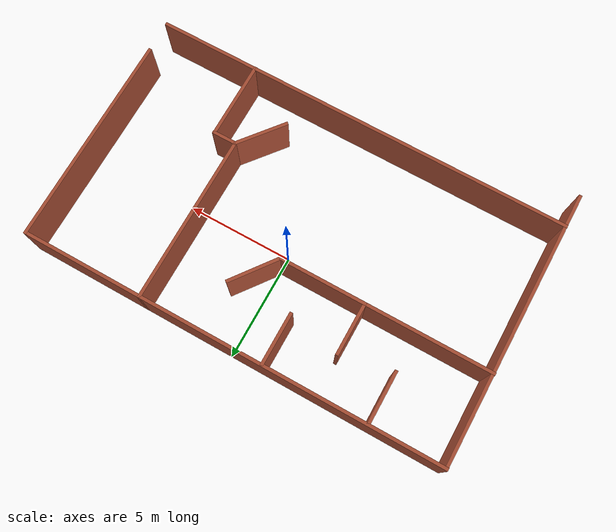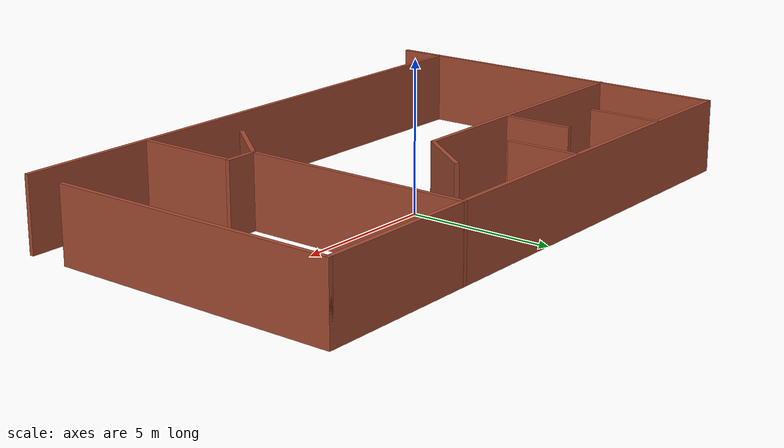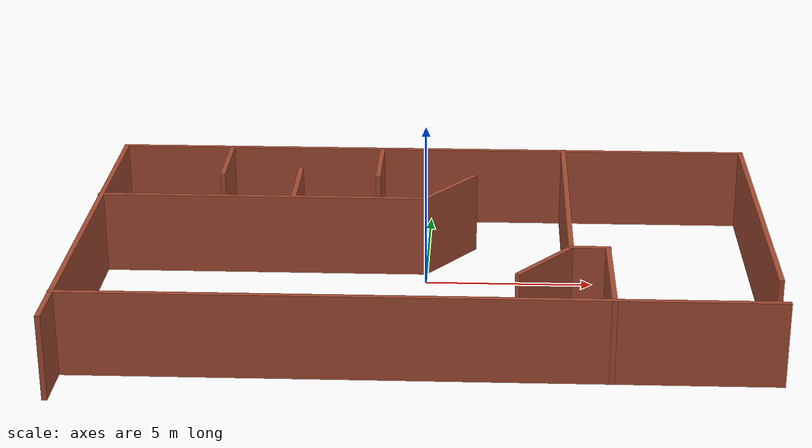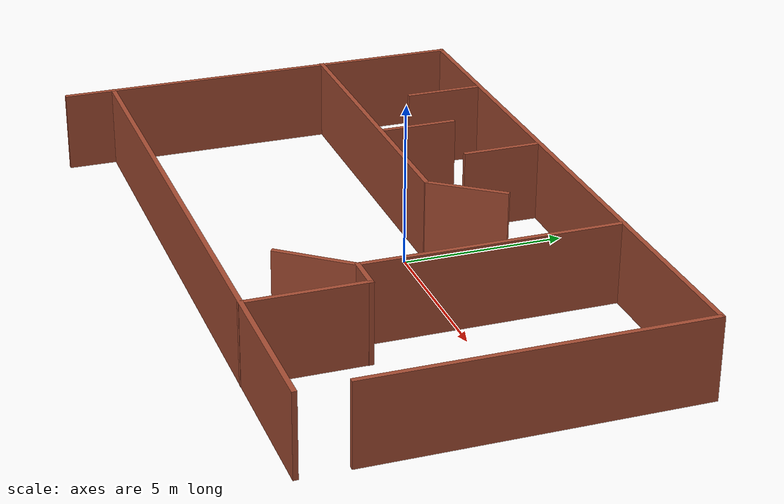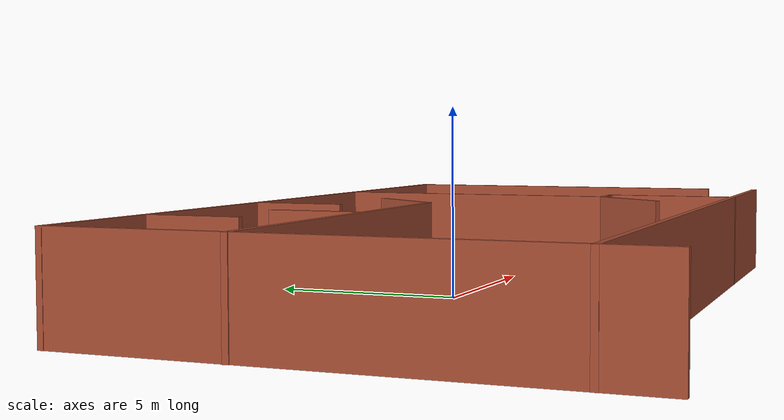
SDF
<?xml version='1.0'?>
<sdf version='1.6'>
  <model name='tesetarena1'>
    <link name='Wall_10'>
      <pose frame=''>-6.45755 3.71248 0 0 0 -1.5708</pose>
      <self_collide>0</self_collide>
      <kinematic>0</kinematic>
      <visual name='Wall_10_Visual'>
        <pose frame=''>0 0 1.25 0 -0 0</pose>
        <geometry>
          <box>
            <size>2.5 0.15 2.5</size>
          </box>
        </geometry>
        <material>
          <script>
            <uri>file://media/materials/scripts/gazebo.material</uri>
            <name>Gazebo/Bricks</name>
          </script>
          <ambient>1 1 1 1</ambient>
          <shader type='pixel'/>
          <diffuse>1 1 1 1</diffuse>
          <specular>0.2 0.2 0.2 1</specular>
          <emissive>0 0 0 1</emissive>
        </material>
        <meta>
          <layer>0</layer>
        </meta>
        <transparency>0</transparency>
        <cast_shadows>1</cast_shadows>
      </visual>
      <collision name='Wall_10_Collision'>
        <laser_retro>0</laser_retro>
        <max_contacts>10</max_contacts>
        <pose frame=''>0 0 1.25 0 -0 0</pose>
        <geometry>
          <box>
            <size>2.5 0.15 2.5</size>
          </box>
        </geometry>
        <surface>
          <friction>
            <ode>
              <mu>1</mu>
              <mu2>1</mu2>
              <fdir1>0 0 0</fdir1>
              <slip1>0</slip1>
              <slip2>0</slip2>
            </ode>
            <torsional>
              <coefficient>1</coefficient>
              <patch_radius>0</patch_radius>
              <surface_radius>0</surface_radius>
              <use_patch_radius>1</use_patch_radius>
              <ode>
                <slip>0</slip>
              </ode>
            </torsional>
          </friction>
          <bounce>
            <restitution_coefficient>0</restitution_coefficient>
            <threshold>1e+06</threshold>
          </bounce>
          <contact>
            <collide_without_contact>0</collide_without_contact>
            <collide_without_contact_bitmask>1</collide_without_contact_bitmask>
            <collide_bitmask>1</collide_bitmask>
            <ode>
              <soft_cfm>0</soft_cfm>
              <soft_erp>0.2</soft_erp>
              <kp>1e+13</kp>
              <kd>1</kd>
              <max_vel>0.01</max_vel>
              <min_depth>0</min_depth>
            </ode>
            <bullet>
              <split_impulse>1</split_impulse>
              <split_impulse_penetration_threshold>-0.01</split_impulse_penetration_threshold>
              <soft_cfm>0</soft_cfm>
              <soft_erp>0.2</soft_erp>
              <kp>1e+13</kp>
              <kd>1</kd>
            </bullet>
          </contact>
        </surface>
      </collision>
    </link>
    <link name='Wall_10_clone_0'>
      <pose frame=''>-1.58683 3.70851 0 0 0 -1.5708</pose>
      <self_collide>0</self_collide>
      <kinematic>0</kinematic>
      <visual name='Wall_10_Visual'>
        <pose frame=''>0 0 1.25 0 -0 0</pose>
        <geometry>
          <box>
            <size>2.5 0.15 2.5</size>
          </box>
        </geometry>
        <material>
          <script>
            <uri>file://media/materials/scripts/gazebo.material</uri>
            <name>Gazebo/Bricks</name>
          </script>
          <ambient>1 1 1 1</ambient>
          <shader type='pixel'/>
          <diffuse>1 1 1 1</diffuse>
          <specular>0.2 0.2 0.2 1</specular>
          <emissive>0 0 0 1</emissive>
        </material>
        <meta>
          <layer>0</layer>
        </meta>
        <transparency>0</transparency>
        <cast_shadows>1</cast_shadows>
      </visual>
      <collision name='Wall_10_Collision'>
        <laser_retro>0</laser_retro>
        <max_contacts>10</max_contacts>
        <pose frame=''>0 0 1.25 0 -0 0</pose>
        <geometry>
          <box>
            <size>2.5 0.15 2.5</size>
          </box>
        </geometry>
        <surface>
          <friction>
            <ode>
              <mu>1</mu>
              <mu2>1</mu2>
              <fdir1>0 0 0</fdir1>
              <slip1>0</slip1>
              <slip2>0</slip2>
            </ode>
            <torsional>
              <coefficient>1</coefficient>
              <patch_radius>0</patch_radius>
              <surface_radius>0</surface_radius>
              <use_patch_radius>1</use_patch_radius>
              <ode>
                <slip>0</slip>
              </ode>
            </torsional>
          </friction>
          <bounce>
            <restitution_coefficient>0</restitution_coefficient>
            <threshold>1e+06</threshold>
          </bounce>
          <contact>
            <collide_without_contact>0</collide_without_contact>
            <collide_without_contact_bitmask>1</collide_without_contact_bitmask>
            <collide_bitmask>1</collide_bitmask>
            <ode>
              <soft_cfm>0</soft_cfm>
              <soft_erp>0.2</soft_erp>
              <kp>1e+13</kp>
              <kd>1</kd>
              <max_vel>0.01</max_vel>
              <min_depth>0</min_depth>
            </ode>
            <bullet>
              <split_impulse>1</split_impulse>
              <split_impulse_penetration_threshold>-0.01</split_impulse_penetration_threshold>
              <soft_cfm>0</soft_cfm>
              <soft_erp>0.2</soft_erp>
              <kp>1e+13</kp>
              <kd>1</kd>
            </bullet>
          </contact>
        </surface>
      </collision>
    </link>
    <link name='Wall_10_clone_0_clone'>
      <pose frame=''>-4.05218 1.85792 0 0 0 -1.5708</pose>
      <self_collide>0</self_collide>
      <kinematic>0</kinematic>
      <visual name='Wall_10_Visual'>
        <pose frame=''>0 0 1.25 0 -0 0</pose>
        <geometry>
          <box>
            <size>2.5 0.15 2.5</size>
          </box>
        </geometry>
        <material>
          <script>
            <uri>file://media/materials/scripts/gazebo.material</uri>
            <name>Gazebo/Bricks</name>
          </script>
          <ambient>1 1 1 1</ambient>
          <shader type='pixel'/>
          <diffuse>1 1 1 1</diffuse>
          <specular>0.2 0.2 0.2 1</specular>
          <emissive>0 0 0 1</emissive>
        </material>
        <meta>
          <layer>0</layer>
        </meta>
        <transparency>0</transparency>
        <cast_shadows>1</cast_shadows>
      </visual>
      <collision name='Wall_10_Collision'>
        <laser_retro>0</laser_retro>
        <max_contacts>10</max_contacts>
        <pose frame=''>0 0 1.25 0 -0 0</pose>
        <geometry>
          <box>
            <size>2.5 0.15 2.5</size>
          </box>
        </geometry>
        <surface>
          <friction>
            <ode>
              <mu>1</mu>
              <mu2>1</mu2>
              <fdir1>0 0 0</fdir1>
              <slip1>0</slip1>
              <slip2>0</slip2>
            </ode>
            <torsional>
              <coefficient>1</coefficient>
              <patch_radius>0</patch_radius>
              <surface_radius>0</surface_radius>
              <use_patch_radius>1</use_patch_radius>
              <ode>
                <slip>0</slip>
              </ode>
            </torsional>
          </friction>
          <bounce>
            <restitution_coefficient>0</restitution_coefficient>
            <threshold>1e+06</threshold>
          </bounce>
          <contact>
            <collide_without_contact>0</collide_without_contact>
            <collide_without_contact_bitmask>1</collide_without_contact_bitmask>
            <collide_bitmask>1</collide_bitmask>
            <ode>
              <soft_cfm>0</soft_cfm>
              <soft_erp>0.2</soft_erp>
              <kp>1e+13</kp>
              <kd>1</kd>
              <max_vel>0.01</max_vel>
              <min_depth>0</min_depth>
            </ode>
            <bullet>
              <split_impulse>1</split_impulse>
              <split_impulse_penetration_threshold>-0.01</split_impulse_penetration_threshold>
              <soft_cfm>0</soft_cfm>
              <soft_erp>0.2</soft_erp>
              <kp>1e+13</kp>
              <kd>1</kd>
            </bullet>
          </contact>
        </surface>
      </collision>
    </link>
    <link name='Wall_10_clone_0_clone_0'>
      <pose frame=''>5.29407 -4.67338 0 0 0 -1.5708</pose>
      <self_collide>0</self_collide>
      <kinematic>0</kinematic>
      <inertial>
        <inertia>
          <ixx>0</ixx>
          <ixy>0</ixy>
          <ixz>0</ixz>
          <iyy>0</iyy>
          <iyz>0</iyz>
          <izz>0</izz>
        </inertia>
        <mass>0</mass>
        <pose frame=''>0 0 0 0 -0 0</pose>
      </inertial>
      <visual name='Wall_10_Visual'>
        <pose frame=''>0 0 1.25 0 -0 0</pose>
        <geometry>
          <box>
            <size>3.7002 0.15 2.5</size>
          </box>
        </geometry>
        <material>
          <script>
            <uri>file://media/materials/scripts/gazebo.material</uri>
            <name>Gazebo/Bricks</name>
          </script>
          <ambient>1 1 1 1</ambient>
          <shader type='pixel'/>
          <diffuse>1 1 1 1</diffuse>
          <specular>0.2 0.2 0.2 1</specular>
          <emissive>0 0 0 1</emissive>
        </material>
        <meta>
          <layer>0</layer>
        </meta>
        <transparency>0</transparency>
        <cast_shadows>1</cast_shadows>
      </visual>
      <collision name='Wall_10_Collision'>
        <laser_retro>0</laser_retro>
        <max_contacts>10</max_contacts>
        <pose frame=''>0 0 1.25 0 -0 0</pose>
        <geometry>
          <box>
            <size>3.7002 0.15 2.5</size>
          </box>
        </geometry>
        <surface>
          <friction>
            <ode>
              <mu>1</mu>
              <mu2>1</mu2>
              <fdir1>0 0 0</fdir1>
              <slip1>0</slip1>
              <slip2>0</slip2>
            </ode>
            <torsional>
              <coefficient>1</coefficient>
              <patch_radius>0</patch_radius>
              <surface_radius>0</surface_radius>
              <use_patch_radius>1</use_patch_radius>
              <ode>
                <slip>0</slip>
              </ode>
            </torsional>
          </friction>
          <bounce>
            <restitution_coefficient>0</restitution_coefficient>
            <threshold>1e+06</threshold>
          </bounce>
          <contact>
            <collide_without_contact>0</collide_without_contact>
            <collide_without_contact_bitmask>1</collide_without_contact_bitmask>
            <collide_bitmask>1</collide_bitmask>
            <ode>
              <soft_cfm>0</soft_cfm>
              <soft_erp>0.2</soft_erp>
              <kp>1e+13</kp>
              <kd>1</kd>
              <max_vel>0.01</max_vel>
              <min_depth>0</min_depth>
            </ode>
            <bullet>
              <split_impulse>1</split_impulse>
              <split_impulse_penetration_threshold>-0.01</split_impulse_penetration_threshold>
              <soft_cfm>0</soft_cfm>
              <soft_erp>0.2</soft_erp>
              <kp>1e+13</kp>
              <kd>1</kd>
            </bullet>
          </contact>
        </surface>
      </collision>
    </link>
    <link name='Wall_10_clone_0_clone_1'>
      <pose frame=''>4.77417 -2.89503 0 0 -0 0</pose>
      <self_collide>0</self_collide>
      <kinematic>0</kinematic>
      <gravity>1</gravity>
      <inertial>
        <mass>0.484259</mass>
        <pose frame=''>0 0 0 0 -0 0</pose>
        <inertia>
          <ixx>0.253126</ixx>
          <ixy>0</ixy>
          <ixz>0</ixz>
          <iyy>0.311365</iyy>
          <iyz>0</iyz>
          <izz>0.0600549</izz>
        </inertia>
      </inertial>
      <visual name='Wall_10_Visual'>
        <pose frame=''>0 0 1.25 0 -0 0</pose>
        <geometry>
          <box>
            <size>1.21065 0.15 2.5</size>
          </box>
        </geometry>
        <material>
          <script>
            <uri>file://media/materials/scripts/gazebo.material</uri>
            <name>Gazebo/Bricks</name>
          </script>
          <ambient>1 1 1 1</ambient>
          <shader type='pixel'>
            <normal_map>__default__</normal_map>
          </shader>
          <diffuse>1 1 1 1</diffuse>
          <specular>0.2 0.2 0.2 1</specular>
          <emissive>0 0 0 1</emissive>
        </material>
        <meta>
          <layer>0</layer>
        </meta>
        <transparency>0</transparency>
        <cast_shadows>1</cast_shadows>
      </visual>
      <collision name='Wall_10_Collision'>
        <laser_retro>0</laser_retro>
        <max_contacts>10</max_contacts>
        <pose frame=''>0 0 1.25 0 -0 0</pose>
        <geometry>
          <box>
            <size>1.21065 0.15 2.5</size>
          </box>
        </geometry>
        <surface>
          <friction>
            <ode>
              <mu>1</mu>
              <mu2>1</mu2>
              <fdir1>0 0 0</fdir1>
              <slip1>0</slip1>
              <slip2>0</slip2>
            </ode>
            <torsional>
              <coefficient>1</coefficient>
              <patch_radius>0</patch_radius>
              <surface_radius>0</surface_radius>
              <use_patch_radius>1</use_patch_radius>
              <ode>
                <slip>0</slip>
              </ode>
            </torsional>
          </friction>
          <bounce>
            <restitution_coefficient>0</restitution_coefficient>
            <threshold>1e+06</threshold>
          </bounce>
          <contact>
            <collide_without_contact>0</collide_without_contact>
            <collide_without_contact_bitmask>1</collide_without_contact_bitmask>
            <collide_bitmask>1</collide_bitmask>
            <ode>
              <soft_cfm>0</soft_cfm>
              <soft_erp>0.2</soft_erp>
              <kp>1e+13</kp>
              <kd>1</kd>
              <max_vel>0.01</max_vel>
              <min_depth>0</min_depth>
            </ode>
            <bullet>
              <split_impulse>1</split_impulse>
              <split_impulse_penetration_threshold>-0.01</split_impulse_penetration_threshold>
              <soft_cfm>0</soft_cfm>
              <soft_erp>0.2</soft_erp>
              <kp>1e+13</kp>
              <kd>1</kd>
            </bullet>
          </contact>
        </surface>
      </collision>
    </link>
    <link name='Wall_10_clone_1'>
      <pose frame=''>0.690016 1.6566 0 0 0 -2.21409</pose>
      <self_collide>0</self_collide>
      <kinematic>0</kinematic>
      <visual name='Wall_10_Visual'>
        <pose frame=''>0 0 1.25 0 -0 0</pose>
        <geometry>
          <box>
            <size>2.5 0.15 2.5</size>
          </box>
        </geometry>
        <material>
          <script>
            <uri>file://media/materials/scripts/gazebo.material</uri>
            <name>Gazebo/Bricks</name>
          </script>
          <ambient>1 1 1 1</ambient>
          <shader type='pixel'/>
          <diffuse>1 1 1 1</diffuse>
          <specular>0.2 0.2 0.2 1</specular>
          <emissive>0 0 0 1</emissive>
        </material>
        <meta>
          <layer>0</layer>
        </meta>
        <transparency>0</transparency>
        <cast_shadows>1</cast_shadows>
      </visual>
      <collision name='Wall_10_Collision'>
        <laser_retro>0</laser_retro>
        <max_contacts>10</max_contacts>
        <pose frame=''>0 0 1.25 0 -0 0</pose>
        <geometry>
          <box>
            <size>2.5 0.15 2.5</size>
          </box>
        </geometry>
        <surface>
          <friction>
            <ode>
              <mu>1</mu>
              <mu2>1</mu2>
              <fdir1>0 0 0</fdir1>
              <slip1>0</slip1>
              <slip2>0</slip2>
            </ode>
            <torsional>
              <coefficient>1</coefficient>
              <patch_radius>0</patch_radius>
              <surface_radius>0</surface_radius>
              <use_patch_radius>1</use_patch_radius>
              <ode>
                <slip>0</slip>
              </ode>
            </torsional>
          </friction>
          <bounce>
            <restitution_coefficient>0</restitution_coefficient>
            <threshold>1e+06</threshold>
          </bounce>
          <contact>
            <collide_without_contact>0</collide_without_contact>
            <collide_without_contact_bitmask>1</collide_without_contact_bitmask>
            <collide_bitmask>1</collide_bitmask>
            <ode>
              <soft_cfm>0</soft_cfm>
              <soft_erp>0.2</soft_erp>
              <kp>1e+13</kp>
              <kd>1</kd>
              <max_vel>0.01</max_vel>
              <min_depth>0</min_depth>
            </ode>
            <bullet>
              <split_impulse>1</split_impulse>
              <split_impulse_penetration_threshold>-0.01</split_impulse_penetration_threshold>
              <soft_cfm>0</soft_cfm>
              <soft_erp>0.2</soft_erp>
              <kp>1e+13</kp>
              <kd>1</kd>
            </bullet>
          </contact>
        </surface>
      </collision>
    </link>
    <link name='Wall_10_clone_2'>
      <pose frame=''>4.24336 1.0169 0 0 0 -1.5708</pose>
      <inertial>
        <inertia>
          <ixx>0</ixx>
          <ixy>0</ixy>
          <ixz>0</ixz>
          <iyy>0</iyy>
          <iyz>0</iyz>
          <izz>0</izz>
        </inertia>
        <mass>0</mass>
        <pose frame=''>0 0 0 0 -0 0</pose>
      </inertial>
      <self_collide>0</self_collide>
      <kinematic>0</kinematic>
      <visual name='Wall_10_Visual'>
        <pose frame=''>0 0 1.25 0 -0 0</pose>
        <geometry>
          <box>
            <size>7.97244 0.15 2.5</size>
          </box>
        </geometry>
        <material>
          <script>
            <uri>file://media/materials/scripts/gazebo.material</uri>
            <name>Gazebo/Bricks</name>
          </script>
          <ambient>1 1 1 1</ambient>
          <shader type='pixel'/>
          <diffuse>1 1 1 1</diffuse>
          <specular>0.2 0.2 0.2 1</specular>
          <emissive>0 0 0 1</emissive>
        </material>
        <meta>
          <layer>0</layer>
        </meta>
        <transparency>0</transparency>
        <cast_shadows>1</cast_shadows>
      </visual>
      <collision name='Wall_10_Collision'>
        <laser_retro>0</laser_retro>
        <max_contacts>10</max_contacts>
        <pose frame=''>0 0 1.25 0 -0 0</pose>
        <geometry>
          <box>
            <size>7.97244 0.15 2.5</size>
          </box>
        </geometry>
        <surface>
          <friction>
            <ode>
              <mu>1</mu>
              <mu2>1</mu2>
              <fdir1>0 0 0</fdir1>
              <slip1>0</slip1>
              <slip2>0</slip2>
            </ode>
            <torsional>
              <coefficient>1</coefficient>
              <patch_radius>0</patch_radius>
              <surface_radius>0</surface_radius>
              <use_patch_radius>1</use_patch_radius>
              <ode>
                <slip>0</slip>
              </ode>
            </torsional>
          </friction>
          <bounce>
            <restitution_coefficient>0</restitution_coefficient>
            <threshold>1e+06</threshold>
          </bounce>
          <contact>
            <collide_without_contact>0</collide_without_contact>
            <collide_without_contact_bitmask>1</collide_without_contact_bitmask>
            <collide_bitmask>1</collide_bitmask>
            <ode>
              <soft_cfm>0</soft_cfm>
              <soft_erp>0.2</soft_erp>
              <kp>1e+13</kp>
              <kd>1</kd>
              <max_vel>0.01</max_vel>
              <min_depth>0</min_depth>
            </ode>
            <bullet>
              <split_impulse>1</split_impulse>
              <split_impulse_penetration_threshold>-0.01</split_impulse_penetration_threshold>
              <soft_cfm>0</soft_cfm>
              <soft_erp>0.2</soft_erp>
              <kp>1e+13</kp>
              <kd>1</kd>
            </bullet>
          </contact>
        </surface>
      </collision>
    </link>
    <link name='Wall_10_clone_3'>
      <pose frame=''>3.47796 -3.86496 0 0 0 -2.24445</pose>
      <self_collide>0</self_collide>
      <kinematic>0</kinematic>
      <visual name='Wall_10_Visual'>
        <pose frame=''>0 0 1.25 0 -0 0</pose>
        <geometry>
          <box>
            <size>2.5 0.15 2.5</size>
          </box>
        </geometry>
        <material>
          <script>
            <uri>file://media/materials/scripts/gazebo.material</uri>
            <name>Gazebo/Bricks</name>
          </script>
          <ambient>1 1 1 1</ambient>
          <shader type='pixel'/>
          <diffuse>1 1 1 1</diffuse>
          <specular>0.2 0.2 0.2 1</specular>
          <emissive>0 0 0 1</emissive>
        </material>
        <meta>
          <layer>0</layer>
        </meta>
        <transparency>0</transparency>
        <cast_shadows>1</cast_shadows>
      </visual>
      <collision name='Wall_10_Collision'>
        <laser_retro>0</laser_retro>
        <max_contacts>10</max_contacts>
        <pose frame=''>0 0 1.25 0 -0 0</pose>
        <geometry>
          <box>
            <size>2.5 0.15 2.5</size>
          </box>
        </geometry>
        <surface>
          <friction>
            <ode>
              <mu>1</mu>
              <mu2>1</mu2>
              <fdir1>0 0 0</fdir1>
              <slip1>0</slip1>
              <slip2>0</slip2>
            </ode>
            <torsional>
              <coefficient>1</coefficient>
              <patch_radius>0</patch_radius>
              <surface_radius>0</surface_radius>
              <use_patch_radius>1</use_patch_radius>
              <ode>
                <slip>0</slip>
              </ode>
            </torsional>
          </friction>
          <bounce>
            <restitution_coefficient>0</restitution_coefficient>
            <threshold>1e+06</threshold>
          </bounce>
          <contact>
            <collide_without_contact>0</collide_without_contact>
            <collide_without_contact_bitmask>1</collide_without_contact_bitmask>
            <collide_bitmask>1</collide_bitmask>
            <ode>
              <soft_cfm>0</soft_cfm>
              <soft_erp>0.2</soft_erp>
              <kp>1e+13</kp>
              <kd>1</kd>
              <max_vel>0.01</max_vel>
              <min_depth>0</min_depth>
            </ode>
            <bullet>
              <split_impulse>1</split_impulse>
              <split_impulse_penetration_threshold>-0.01</split_impulse_penetration_threshold>
              <soft_cfm>0</soft_cfm>
              <soft_erp>0.2</soft_erp>
              <kp>1e+13</kp>
              <kd>1</kd>
            </bullet>
          </contact>
        </surface>
      </collision>
    </link>
    <link name='Wall_13'>
      <pose frame=''>-5.01901 0.669307 0 0 -0 3.14159</pose>
      <inertial>
        <mass>1</mass>
        <pose frame=''>0 0 0 0 -0 0</pose>
        <inertia>
          <ixx>1</ixx>
          <ixy>0</ixy>
          <ixz>0</ixz>
          <iyy>1</iyy>
          <iyz>0</iyz>
          <izz>1</izz>
        </inertia>
      </inertial>
      <self_collide>0</self_collide>
      <kinematic>0</kinematic>
      <visual name='Wall_13_Visual'>
        <pose frame=''>0 0 1.25 0 -0 0</pose>
        <geometry>
          <box>
            <size>10 0.15 2.5</size>
          </box>
        </geometry>
        <material>
          <script>
            <uri>file://media/materials/scripts/gazebo.material</uri>
            <name>Gazebo/Bricks</name>
          </script>
          <ambient>1 1 1 1</ambient>
          <shader type='pixel'>
            <normal_map>__default__</normal_map>
          </shader>
          <diffuse>1 1 1 1</diffuse>
          <specular>0.2 0.2 0.2 1</specular>
          <emissive>0 0 0 1</emissive>
        </material>
        <meta>
          <layer>0</layer>
        </meta>
        <transparency>0</transparency>
        <cast_shadows>1</cast_shadows>
      </visual>
      <collision name='Wall_13_Collision'>
        <laser_retro>0</laser_retro>
        <max_contacts>10</max_contacts>
        <pose frame=''>0 0 1.25 0 -0 0</pose>
        <geometry>
          <box>
            <size>10 0.15 2.5</size>
          </box>
        </geometry>
        <surface>
          <friction>
            <ode>
              <mu>1</mu>
              <mu2>1</mu2>
              <fdir1>0 0 0</fdir1>
              <slip1>0</slip1>
              <slip2>0</slip2>
            </ode>
            <torsional>
              <coefficient>1</coefficient>
              <patch_radius>0</patch_radius>
              <surface_radius>0</surface_radius>
              <use_patch_radius>1</use_patch_radius>
              <ode>
                <slip>0</slip>
              </ode>
            </torsional>
          </friction>
          <bounce>
            <restitution_coefficient>0</restitution_coefficient>
            <threshold>1e+06</threshold>
          </bounce>
          <contact>
            <collide_without_contact>0</collide_without_contact>
            <collide_without_contact_bitmask>1</collide_without_contact_bitmask>
            <collide_bitmask>1</collide_bitmask>
            <ode>
              <soft_cfm>0</soft_cfm>
              <soft_erp>0.2</soft_erp>
              <kp>1e+13</kp>
              <kd>1</kd>
              <max_vel>0.01</max_vel>
              <min_depth>0</min_depth>
            </ode>
            <bullet>
              <split_impulse>1</split_impulse>
              <split_impulse_penetration_threshold>-0.01</split_impulse_penetration_threshold>
              <soft_cfm>0</soft_cfm>
              <soft_erp>0.2</soft_erp>
              <kp>1e+13</kp>
              <kd>1</kd>
            </bullet>
          </contact>
        </surface>
      </collision>
    </link>
    <link name='Wall_2'>
      <pose frame=''>0 4.925 0 0 -0 0</pose>
      <self_collide>0</self_collide>
      <kinematic>0</kinematic>
      <visual name='Wall_2_Visual'>
        <pose frame=''>0 0 1.25 0 -0 0</pose>
        <geometry>
          <box>
            <size>20 0.15 2.5</size>
          </box>
        </geometry>
        <material>
          <script>
            <uri>file://media/materials/scripts/gazebo.material</uri>
            <name>Gazebo/Bricks</name>
          </script>
          <ambient>1 1 1 1</ambient>
          <shader type='pixel'/>
          <diffuse>1 1 1 1</diffuse>
          <specular>0.2 0.2 0.2 1</specular>
          <emissive>0 0 0 1</emissive>
        </material>
        <meta>
          <layer>0</layer>
        </meta>
        <transparency>0</transparency>
        <cast_shadows>1</cast_shadows>
      </visual>
      <collision name='Wall_2_Collision'>
        <laser_retro>0</laser_retro>
        <max_contacts>10</max_contacts>
        <pose frame=''>0 0 1.25 0 -0 0</pose>
        <geometry>
          <box>
            <size>20 0.15 2.5</size>
          </box>
        </geometry>
        <surface>
          <friction>
            <ode>
              <mu>1</mu>
              <mu2>1</mu2>
              <fdir1>0 0 0</fdir1>
              <slip1>0</slip1>
              <slip2>0</slip2>
            </ode>
            <torsional>
              <coefficient>1</coefficient>
              <patch_radius>0</patch_radius>
              <surface_radius>0</surface_radius>
              <use_patch_radius>1</use_patch_radius>
              <ode>
                <slip>0</slip>
              </ode>
            </torsional>
          </friction>
          <bounce>
            <restitution_coefficient>0</restitution_coefficient>
            <threshold>1e+06</threshold>
          </bounce>
          <contact>
            <collide_without_contact>0</collide_without_contact>
            <collide_without_contact_bitmask>1</collide_without_contact_bitmask>
            <collide_bitmask>1</collide_bitmask>
            <ode>
              <soft_cfm>0</soft_cfm>
              <soft_erp>0.2</soft_erp>
              <kp>1e+13</kp>
              <kd>1</kd>
              <max_vel>0.01</max_vel>
              <min_depth>0</min_depth>
            </ode>
            <bullet>
              <split_impulse>1</split_impulse>
              <split_impulse_penetration_threshold>-0.01</split_impulse_penetration_threshold>
              <soft_cfm>0</soft_cfm>
              <soft_erp>0.2</soft_erp>
              <kp>1e+13</kp>
              <kd>1</kd>
            </bullet>
          </contact>
        </surface>
      </collision>
    </link>
    <link name='Wall_4'>
      <pose frame=''>9.925 0 0 0 0 -1.5708</pose>
      <self_collide>0</self_collide>
      <kinematic>0</kinematic>
      <visual name='Wall_4_Visual'>
        <pose frame=''>0 0 1.25 0 -0 0</pose>
        <geometry>
          <box>
            <size>10 0.15 2.5</size>
          </box>
        </geometry>
        <material>
          <script>
            <uri>file://media/materials/scripts/gazebo.material</uri>
            <name>Gazebo/Bricks</name>
          </script>
          <ambient>1 1 1 1</ambient>
          <shader type='pixel'/>
          <diffuse>1 1 1 1</diffuse>
          <specular>0.2 0.2 0.2 1</specular>
          <emissive>0 0 0 1</emissive>
        </material>
        <meta>
          <layer>0</layer>
        </meta>
        <transparency>0</transparency>
        <cast_shadows>1</cast_shadows>
      </visual>
      <collision name='Wall_4_Collision'>
        <laser_retro>0</laser_retro>
        <max_contacts>10</max_contacts>
        <pose frame=''>0 0 1.25 0 -0 0</pose>
        <geometry>
          <box>
            <size>10 0.15 2.5</size>
          </box>
        </geometry>
        <surface>
          <friction>
            <ode>
              <mu>1</mu>
              <mu2>1</mu2>
              <fdir1>0 0 0</fdir1>
              <slip1>0</slip1>
              <slip2>0</slip2>
            </ode>
            <torsional>
              <coefficient>1</coefficient>
              <patch_radius>0</patch_radius>
              <surface_radius>0</surface_radius>
              <use_patch_radius>1</use_patch_radius>
              <ode>
                <slip>0</slip>
              </ode>
            </torsional>
          </friction>
          <bounce>
            <restitution_coefficient>0</restitution_coefficient>
            <threshold>1e+06</threshold>
          </bounce>
          <contact>
            <collide_without_contact>0</collide_without_contact>
            <collide_without_contact_bitmask>1</collide_without_contact_bitmask>
            <collide_bitmask>1</collide_bitmask>
            <ode>
              <soft_cfm>0</soft_cfm>
              <soft_erp>0.2</soft_erp>
              <kp>1e+13</kp>
              <kd>1</kd>
              <max_vel>0.01</max_vel>
              <min_depth>0</min_depth>
            </ode>
            <bullet>
              <split_impulse>1</split_impulse>
              <split_impulse_penetration_threshold>-0.01</split_impulse_penetration_threshold>
              <soft_cfm>0</soft_cfm>
              <soft_erp>0.2</soft_erp>
              <kp>1e+13</kp>
              <kd>1</kd>
            </bullet>
          </contact>
        </surface>
      </collision>
    </link>
    <link name='Wall_6'>
      <pose frame=''>-9.9146 -1.51392 0 0 0 -1.5708</pose>
      <inertial>
        <mass>1</mass>
        <pose frame=''>0 0 0 0 -0 0</pose>
        <inertia>
          <ixx>1</ixx>
          <ixy>0</ixy>
          <ixz>0</ixz>
          <iyy>1</iyy>
          <iyz>0</iyz>
          <izz>1</izz>
        </inertia>
      </inertial>
      <self_collide>0</self_collide>
      <kinematic>0</kinematic>
      <visual name='Wall_6_Visual'>
        <pose frame=''>0 0 1.25 0 -0 0</pose>
        <geometry>
          <box>
            <size>13 0.15 2.5</size>
          </box>
        </geometry>
        <material>
          <script>
            <uri>file://media/materials/scripts/gazebo.material</uri>
            <name>Gazebo/Bricks</name>
          </script>
          <ambient>1 1 1 1</ambient>
          <shader type='pixel'>
            <normal_map>__default__</normal_map>
          </shader>
          <diffuse>1 1 1 1</diffuse>
          <specular>0.2 0.2 0.2 1</specular>
          <emissive>0 0 0 1</emissive>
        </material>
        <meta>
          <layer>0</layer>
        </meta>
        <transparency>0</transparency>
        <cast_shadows>1</cast_shadows>
      </visual>
      <collision name='Wall_6_Collision'>
        <laser_retro>0</laser_retro>
        <max_contacts>10</max_contacts>
        <pose frame=''>0 0 1.25 0 -0 0</pose>
        <geometry>
          <box>
            <size>10 0.15 2.5</size>
          </box>
        </geometry>
        <surface>
          <friction>
            <ode>
              <mu>1</mu>
              <mu2>1</mu2>
              <fdir1>0 0 0</fdir1>
              <slip1>0</slip1>
              <slip2>0</slip2>
            </ode>
            <torsional>
              <coefficient>1</coefficient>
              <patch_radius>0</patch_radius>
              <surface_radius>0</surface_radius>
              <use_patch_radius>1</use_patch_radius>
              <ode>
                <slip>0</slip>
              </ode>
            </torsional>
          </friction>
          <bounce>
            <restitution_coefficient>0</restitution_coefficient>
            <threshold>1e+06</threshold>
          </bounce>
          <contact>
            <collide_without_contact>0</collide_without_contact>
            <collide_without_contact_bitmask>1</collide_without_contact_bitmask>
            <collide_bitmask>1</collide_bitmask>
            <ode>
              <soft_cfm>0</soft_cfm>
              <soft_erp>0.2</soft_erp>
              <kp>1e+13</kp>
              <kd>1</kd>
              <max_vel>0.01</max_vel>
              <min_depth>0</min_depth>
            </ode>
            <bullet>
              <split_impulse>1</split_impulse>
              <split_impulse_penetration_threshold>-0.01</split_impulse_penetration_threshold>
              <soft_cfm>0</soft_cfm>
              <soft_erp>0.2</soft_erp>
              <kp>1e+13</kp>
              <kd>1</kd>
            </bullet>
          </contact>
        </surface>
      </collision>
    </link>
    <link name='Wall_8'>
      <pose frame=''>0 -6.4401 0 0 -0 0</pose>
      <self_collide>0</self_collide>
      <kinematic>0</kinematic>
      <visual name='Wall_8_Visual'>
        <pose frame=''>0 0 1.25 0 -0 0</pose>
        <geometry>
          <box>
            <size>20 0.15 2.5</size>
          </box>
        </geometry>
        <material>
          <script>
            <uri>file://media/materials/scripts/gazebo.material</uri>
            <name>Gazebo/Bricks</name>
          </script>
          <ambient>1 1 1 1</ambient>
          <shader type='pixel'/>
          <diffuse>1 1 1 1</diffuse>
          <specular>0.2 0.2 0.2 1</specular>
          <emissive>0 0 0 1</emissive>
        </material>
        <meta>
          <layer>0</layer>
        </meta>
        <transparency>0</transparency>
        <cast_shadows>1</cast_shadows>
      </visual>
      <collision name='Wall_8_Collision'>
        <laser_retro>0</laser_retro>
        <max_contacts>10</max_contacts>
        <pose frame=''>0 0 1.25 0 -0 0</pose>
        <geometry>
          <box>
            <size>20 0.15 2.5</size>
          </box>
        </geometry>
        <surface>
          <friction>
            <ode>
              <mu>1</mu>
              <mu2>1</mu2>
              <fdir1>0 0 0</fdir1>
              <slip1>0</slip1>
              <slip2>0</slip2>
            </ode>
            <torsional>
              <coefficient>1</coefficient>
              <patch_radius>0</patch_radius>
              <surface_radius>0</surface_radius>
              <use_patch_radius>1</use_patch_radius>
              <ode>
                <slip>0</slip>
              </ode>
            </torsional>
          </friction>
          <bounce>
            <restitution_coefficient>0</restitution_coefficient>
            <threshold>1e+06</threshold>
          </bounce>
          <contact>
            <collide_without_contact>0</collide_without_contact>
            <collide_without_contact_bitmask>1</collide_without_contact_bitmask>
            <collide_bitmask>1</collide_bitmask>
            <ode>
              <soft_cfm>0</soft_cfm>
              <soft_erp>0.2</soft_erp>
              <kp>1e+13</kp>
              <kd>1</kd>
              <max_vel>0.01</max_vel>
              <min_depth>0</min_depth>
            </ode>
            <bullet>
              <split_impulse>1</split_impulse>
              <split_impulse_penetration_threshold>-0.01</split_impulse_penetration_threshold>
              <soft_cfm>0</soft_cfm>
              <soft_erp>0.2</soft_erp>
              <kp>1e+13</kp>
              <kd>1</kd>
            </bullet>
          </contact>
        </surface>
      </collision>
    </link>
    <static>1</static>
    <allow_auto_disable>1</allow_auto_disable>
  </model>
</sdf>
